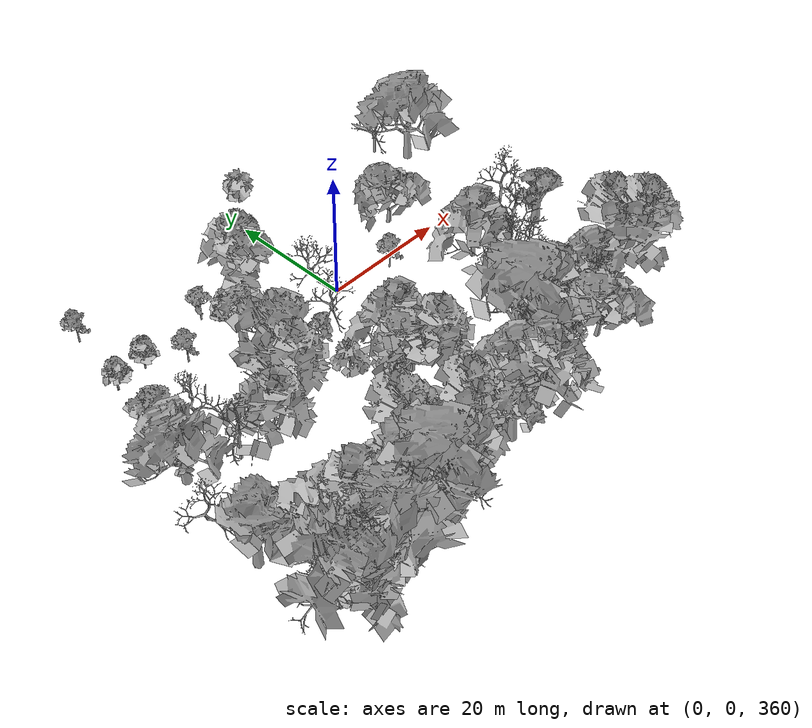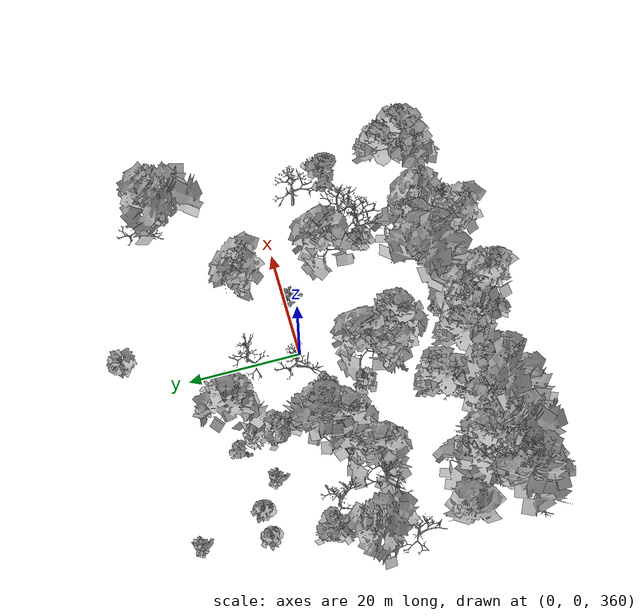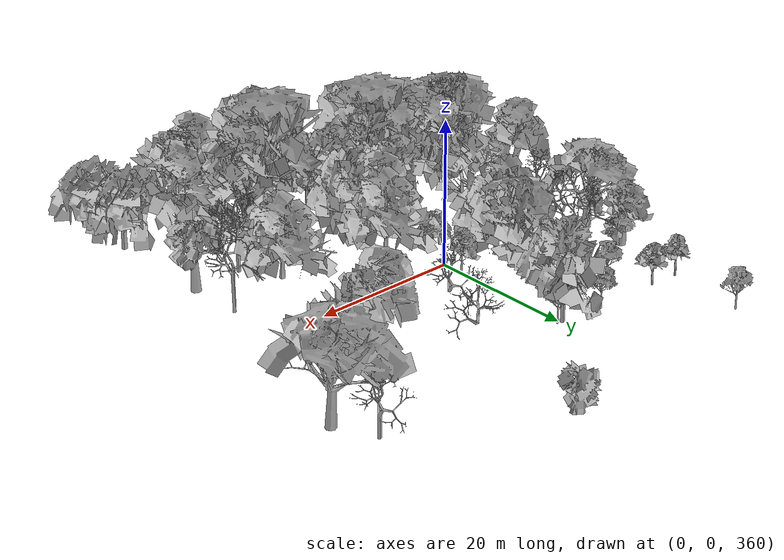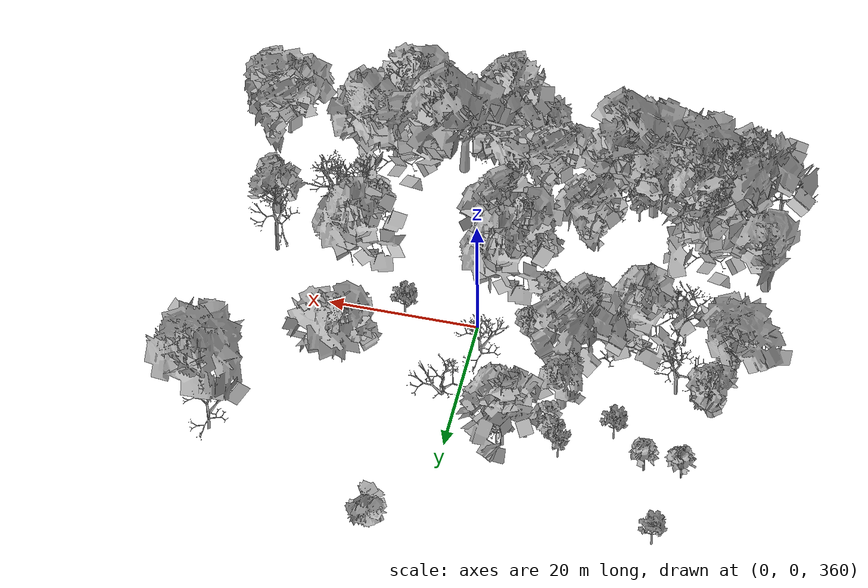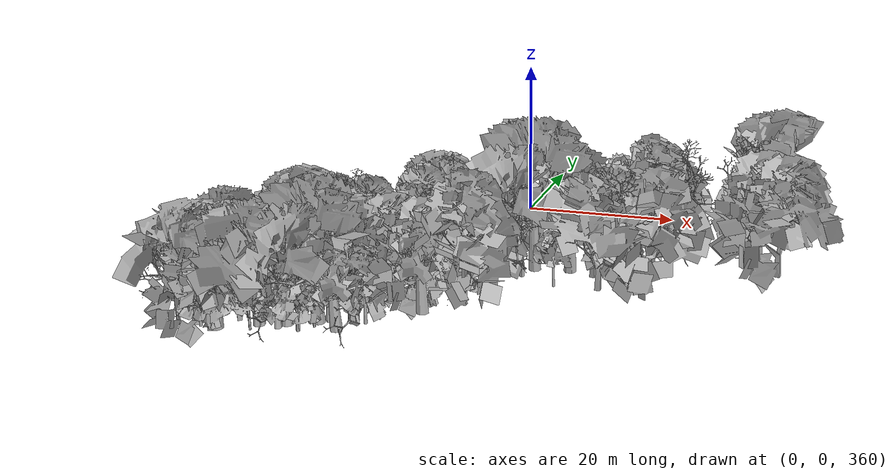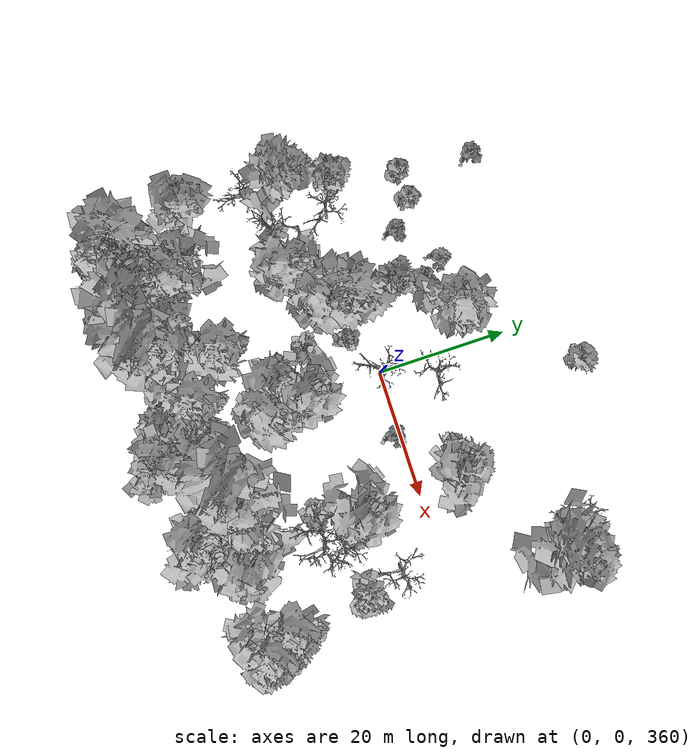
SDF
<sdf version="1.6">
 <world name="default">
  <light name="sun" type="directional">
   <pose>0 0 10 0 -0 0</pose>
   <diffuse>0.8 0.8 0.8 1</diffuse>
   <specular>0.2 0.2 0.2 1</specular>
   <attenuation>
    <range>1000</range>
    <constant>0.9</constant>
    <linear>0.01</linear>
    <quadratic>0.001</quadratic>
   </attenuation>
   <direction>-0.5 0.1 -0.9</direction>
  </light>
  <scene>
   <sky><clouds><speed>12</speed></clouds></sky>
   <ambient>0.4 0.4 0.4 1</ambient>
   <background>0.7 0.7 0.7 1</background>
   <shadows>1</shadows>
  </scene>
  <spherical_coordinates>
   <surface_model>EARTH_WGS84</surface_model>
   <latitude_deg>47.3977</latitude_deg>
   <longitude_deg>8.54559</longitude_deg>
   <elevation>0</elevation>
   <heading_deg>0</heading_deg>
  </spherical_coordinates>
  <physics name="default_physics" default="0" type="ode">
   <ode>
    <solver>
     <type>quick</type>
     <iters>100</iters>
     <sor>1.3</sor>
     <use_dynamic_moi_rescaling>0</use_dynamic_moi_rescaling>
    </solver>
    <constraints>
     <cfm>0</cfm>
     <erp>0.2</erp>
     <contact_max_correcting_vel>100</contact_max_correcting_vel>
     <contact_surface_layer>0.001</contact_surface_layer>
    </constraints>
   </ode>
   <max_step_size>0.002</max_step_size>
   <real_time_factor>1</real_time_factor>
   <real_time_update_rate>500</real_time_update_rate>
  </physics>
  <gravity>0 0 -9.8</gravity>
  <magnetic_field>6e-06 2.3e-05 -4.2e-05</magnetic_field>
  <atmosphere type="adiabatic"/>
  <model name="my_mesh0">
   <pose>-31.9616 -32.6621 352.6 0 0 -0.644638</pose>
   <static>1</static>
   <link name="body">
    <visual name="visual">
     <geometry><mesh><uri>model://trees/9.dae</uri><scale>1 1 1</scale></mesh></geometry>
    </visual>
    <collision name="collision">
     <geometry><mesh><uri>model://trees/9.dae</uri><scale>1 1 1</scale></mesh></geometry>
    </collision>
   </link>
  </model>
  <model name="my_mesh1">
   <pose>-2.45586 -34.0318 358.211 0 -0 0.863021</pose>
   <static>1</static>
   <link name="body">
    <visual name="visual">
     <geometry><mesh><uri>model://trees/7.dae</uri><scale>1 1 1</scale></mesh></geometry>
    </visual>
    <collision name="collision">
     <geometry><mesh><uri>model://trees/7.dae</uri><scale>1 1 1</scale></mesh></geometry>
    </collision>
   </link>
  </model>
  <model name="my_mesh2">
   <pose>-2.94447 -28.1812 357.92 0 0 -0.448792</pose>
   <static>1</static>
   <link name="body">
    <visual name="visual">
     <geometry><mesh><uri>model://trees/0.dae</uri><scale>1 1 1</scale></mesh></geometry>
    </visual>
    <collision name="collision">
     <geometry><mesh><uri>model://trees/0.dae</uri><scale>1 1 1</scale></mesh></geometry>
    </collision>
   </link>
  </model>
  <model name="my_mesh3">
   <pose>-23.2291 -33.0961 353.685 0 -0 0.7022</pose>
   <static>1</static>
   <link name="body">
    <visual name="visual">
     <geometry><mesh><uri>model://trees/9.dae</uri><scale>1 1 1</scale></mesh></geometry>
    </visual>
    <collision name="collision">
     <geometry><mesh><uri>model://trees/9.dae</uri><scale>1 1 1</scale></mesh></geometry>
    </collision>
   </link>
  </model>
  <model name="my_mesh4">
   <pose>-20.8347 -32.3833 354.071 0 0 -0.232654</pose>
   <static>1</static>
   <link name="body">
    <visual name="visual">
     <geometry><mesh><uri>model://trees/18.dae</uri><scale>1 1 1</scale></mesh></geometry>
    </visual>
    <collision name="collision">
     <geometry><mesh><uri>model://trees/18.dae</uri><scale>1 1 1</scale></mesh></geometry>
    </collision>
   </link>
  </model>
  <model name="my_mesh5">
   <pose>-9.28209 -33.8644 355.96 0 0 -0.491317</pose>
   <static>1</static>
   <link name="body">
    <visual name="visual">
     <geometry><mesh><uri>model://trees/5.dae</uri><scale>1 1 1</scale></mesh></geometry>
    </visual>
    <collision name="collision">
     <geometry><mesh><uri>model://trees/5.dae</uri><scale>1 1 1</scale></mesh></geometry>
    </collision>
   </link>
  </model>
  <model name="my_mesh6">
   <pose>-16.8988 -32.1122 354.467 0 -0 0.034575</pose>
   <static>1</static>
   <link name="body">
    <visual name="visual">
     <geometry><mesh><uri>model://trees/3.dae</uri><scale>1 1 1</scale></mesh></geometry>
    </visual>
    <collision name="collision">
     <geometry><mesh><uri>model://trees/3.dae</uri><scale>1 1 1</scale></mesh></geometry>
    </collision>
   </link>
  </model>
  <model name="my_mesh7">
   <pose>17.7326 -30.8489 362.365 0 0 -0.478753</pose>
   <static>1</static>
   <link name="body">
    <visual name="visual">
     <geometry><mesh><uri>model://trees/16.dae</uri><scale>1 1 1</scale></mesh></geometry>
    </visual>
    <collision name="collision">
     <geometry><mesh><uri>model://trees/16.dae</uri><scale>1 1 1</scale></mesh></geometry>
    </collision>
   </link>
  </model>
  <model name="my_mesh8">
   <pose>-28.0536 -34.3085 353.142 0 0 -0.996813</pose>
   <static>1</static>
   <link name="body">
    <visual name="visual">
     <geometry><mesh><uri>model://trees/7.dae</uri><scale>1 1 1</scale></mesh></geometry>
    </visual>
    <collision name="collision">
     <geometry><mesh><uri>model://trees/7.dae</uri><scale>1 1 1</scale></mesh></geometry>
    </collision>
   </link>
  </model>
  <model name="my_mesh9">
   <pose>-19.8212 -32.8134 354.159 0 0 -1.15603</pose>
   <static>1</static>
   <link name="body">
    <visual name="visual">
     <geometry><mesh><uri>model://trees/3.dae</uri><scale>1 1 1</scale></mesh></geometry>
    </visual>
    <collision name="collision">
     <geometry><mesh><uri>model://trees/3.dae</uri><scale>1 1 1</scale></mesh></geometry>
    </collision>
   </link>
  </model>
  <model name="my_mesh10">
   <pose>-20.2462 -33.931 354.063 0 0 -0.728865</pose>
   <static>1</static>
   <link name="body">
    <visual name="visual">
     <geometry><mesh><uri>model://trees/0.dae</uri><scale>1 1 1</scale></mesh></geometry>
    </visual>
    <collision name="collision">
     <geometry><mesh><uri>model://trees/0.dae</uri><scale>1 1 1</scale></mesh></geometry>
    </collision>
   </link>
  </model>
  <model name="my_mesh11">
   <pose>11.3092 -32.0291 361.992 0 -0 1.49483</pose>
   <static>1</static>
   <link name="body">
    <visual name="visual">
     <geometry><mesh><uri>model://trees/6.dae</uri><scale>1 1 1</scale></mesh></geometry>
    </visual>
    <collision name="collision">
     <geometry><mesh><uri>model://trees/6.dae</uri><scale>1 1 1</scale></mesh></geometry>
    </collision>
   </link>
  </model>
  <model name="my_mesh12">
   <pose>-10.739 -22.285 355.56 0 -0 0.79419</pose>
   <static>1</static>
   <link name="body">
    <visual name="visual">
     <geometry><mesh><uri>model://trees/1.dae</uri><scale>1 1 1</scale></mesh></geometry>
    </visual>
    <collision name="collision">
     <geometry><mesh><uri>model://trees/1.dae</uri><scale>1 1 1</scale></mesh></geometry>
    </collision>
   </link>
  </model>
  <model name="my_mesh13">
   <pose>-12.6667 -29.9827 355.102 0 0 -1.39934</pose>
   <static>1</static>
   <link name="body">
    <visual name="visual">
     <geometry><mesh><uri>model://trees/11.dae</uri><scale>1 1 1</scale></mesh></geometry>
    </visual>
    <collision name="collision">
     <geometry><mesh><uri>model://trees/11.dae</uri><scale>1 1 1</scale></mesh></geometry>
    </collision>
   </link>
  </model>
  <model name="my_mesh14">
   <pose>-26.1301 -31.0528 353.348 0 -0 0.973771</pose>
   <static>1</static>
   <link name="body">
    <visual name="visual">
     <geometry><mesh><uri>model://trees/6.dae</uri><scale>1 1 1</scale></mesh></geometry>
    </visual>
    <collision name="collision">
     <geometry><mesh><uri>model://trees/6.dae</uri><scale>1 1 1</scale></mesh></geometry>
    </collision>
   </link>
  </model>
  <model name="my_mesh15">
   <pose>2.02236 -30.4488 359.914 0 -0 1.04379</pose>
   <static>1</static>
   <link name="body">
    <visual name="visual">
     <geometry><mesh><uri>model://trees/12.dae</uri><scale>1 1 1</scale></mesh></geometry>
    </visual>
    <collision name="collision">
     <geometry><mesh><uri>model://trees/12.dae</uri><scale>1 1 1</scale></mesh></geometry>
    </collision>
   </link>
  </model>
  <model name="my_mesh16">
   <pose>-34.6397 -32.7271 352.13 0 0 -1.29028</pose>
   <static>1</static>
   <link name="body">
    <visual name="visual">
     <geometry><mesh><uri>model://trees/16.dae</uri><scale>1 1 1</scale></mesh></geometry>
    </visual>
    <collision name="collision">
     <geometry><mesh><uri>model://trees/16.dae</uri><scale>1 1 1</scale></mesh></geometry>
    </collision>
   </link>
  </model>
  <model name="my_mesh17">
   <pose>-4.30556 -29.3713 357.237 0 0 -0.629741</pose>
   <static>1</static>
   <link name="body">
    <visual name="visual">
     <geometry><mesh><uri>model://trees/13.dae</uri><scale>1 1 1</scale></mesh></geometry>
    </visual>
    <collision name="collision">
     <geometry><mesh><uri>model://trees/13.dae</uri><scale>1 1 1</scale></mesh></geometry>
    </collision>
   </link>
  </model>
  <model name="my_mesh18">
   <pose>1.2946 -32.9496 359.534 0 -0 0.631142</pose>
   <static>1</static>
   <link name="body">
    <visual name="visual">
     <geometry><mesh><uri>model://trees/1.dae</uri><scale>1 1 1</scale></mesh></geometry>
    </visual>
    <collision name="collision">
     <geometry><mesh><uri>model://trees/1.dae</uri><scale>1 1 1</scale></mesh></geometry>
    </collision>
   </link>
  </model>
  <model name="my_mesh19">
   <pose>-12.5524 -34.5315 355.067 0 -0 1.21509</pose>
   <static>1</static>
   <link name="body">
    <visual name="visual">
     <geometry><mesh><uri>model://trees/7.dae</uri><scale>1 1 1</scale></mesh></geometry>
    </visual>
    <collision name="collision">
     <geometry><mesh><uri>model://trees/7.dae</uri><scale>1 1 1</scale></mesh></geometry>
    </collision>
   </link>
  </model>
  <model name="my_mesh20">
   <pose>-15.7928 -32.4644 354.63 0 0 -0.480543</pose>
   <static>1</static>
   <link name="body">
    <visual name="visual">
     <geometry><mesh><uri>model://trees/10.dae</uri><scale>1 1 1</scale></mesh></geometry>
    </visual>
    <collision name="collision">
     <geometry><mesh><uri>model://trees/10.dae</uri><scale>1 1 1</scale></mesh></geometry>
    </collision>
   </link>
  </model>
  <model name="my_mesh21">
   <pose>-19.4488 -33.173 354.235 0 -0 0.231225</pose>
   <static>1</static>
   <link name="body">
    <visual name="visual">
     <geometry><mesh><uri>model://trees/7.dae</uri><scale>1 1 1</scale></mesh></geometry>
    </visual>
    <collision name="collision">
     <geometry><mesh><uri>model://trees/7.dae</uri><scale>1 1 1</scale></mesh></geometry>
    </collision>
   </link>
  </model>
  <model name="my_mesh22">
   <pose>-28.4609 -34.9176 353.165 0 0 -0.772738</pose>
   <static>1</static>
   <link name="body">
    <visual name="visual">
     <geometry><mesh><uri>model://trees/13.dae</uri><scale>1 1 1</scale></mesh></geometry>
    </visual>
    <collision name="collision">
     <geometry><mesh><uri>model://trees/13.dae</uri><scale>1 1 1</scale></mesh></geometry>
    </collision>
   </link>
  </model>
  <model name="my_mesh23">
   <pose>-15.7627 -33.6822 354.62 0 0 -1.33332</pose>
   <static>1</static>
   <link name="body">
    <visual name="visual">
     <geometry><mesh><uri>model://trees/2.dae</uri><scale>1 1 1</scale></mesh></geometry>
    </visual>
    <collision name="collision">
     <geometry><mesh><uri>model://trees/2.dae</uri><scale>1 1 1</scale></mesh></geometry>
    </collision>
   </link>
  </model>
  <model name="my_mesh24">
   <pose>-30.7 -33.7875 352.853 0 0 -0.228179</pose>
   <static>1</static>
   <link name="body">
    <visual name="visual">
     <geometry><mesh><uri>model://trees/5.dae</uri><scale>1 1 1</scale></mesh></geometry>
    </visual>
    <collision name="collision">
     <geometry><mesh><uri>model://trees/5.dae</uri><scale>1 1 1</scale></mesh></geometry>
    </collision>
   </link>
  </model>
  <model name="my_mesh25">
   <pose>-3.49565 -31.3298 357.447 0 0 -0.848578</pose>
   <static>1</static>
   <link name="body">
    <visual name="visual">
     <geometry><mesh><uri>model://trees/4.dae</uri><scale>1 1 1</scale></mesh></geometry>
    </visual>
    <collision name="collision">
     <geometry><mesh><uri>model://trees/4.dae</uri><scale>1 1 1</scale></mesh></geometry>
    </collision>
   </link>
  </model>
  <model name="my_mesh26">
   <pose>-12.4435 -24.7934 355.113 0 0 -0.609064</pose>
   <static>1</static>
   <link name="body">
    <visual name="visual">
     <geometry><mesh><uri>model://trees/17.dae</uri><scale>1 1 1</scale></mesh></geometry>
    </visual>
    <collision name="collision">
     <geometry><mesh><uri>model://trees/17.dae</uri><scale>1 1 1</scale></mesh></geometry>
    </collision>
   </link>
  </model>
  <model name="my_mesh27">
   <pose>-13.2617 -32.6478 354.922 0 -0 0.856202</pose>
   <static>1</static>
   <link name="body">
    <visual name="visual">
     <geometry><mesh><uri>model://trees/6.dae</uri><scale>1 1 1</scale></mesh></geometry>
    </visual>
    <collision name="collision">
     <geometry><mesh><uri>model://trees/6.dae</uri><scale>1 1 1</scale></mesh></geometry>
    </collision>
   </link>
  </model>
  <model name="my_mesh28">
   <pose>-26.7477 -31.7982 353.28 0 0 -0.145952</pose>
   <static>1</static>
   <link name="body">
    <visual name="visual">
     <geometry><mesh><uri>model://trees/14.dae</uri><scale>1 1 1</scale></mesh></geometry>
    </visual>
    <collision name="collision">
     <geometry><mesh><uri>model://trees/14.dae</uri><scale>1 1 1</scale></mesh></geometry>
    </collision>
   </link>
  </model>
  <model name="my_mesh29">
   <pose>-10.5729 -33.1514 355.5 0 -0 0.073133</pose>
   <static>1</static>
   <link name="body">
    <visual name="visual">
     <geometry><mesh><uri>model://trees/19.dae</uri><scale>1 1 1</scale></mesh></geometry>
    </visual>
    <collision name="collision">
     <geometry><mesh><uri>model://trees/19.dae</uri><scale>1 1 1</scale></mesh></geometry>
    </collision>
   </link>
  </model>
  <model name="my_mesh30">
   <pose>-24.3112 -26.7209 353.578 0 -0 0.035502</pose>
   <static>1</static>
   <link name="body">
    <visual name="visual">
     <geometry><mesh><uri>model://trees/15.dae</uri><scale>1 1 1</scale></mesh></geometry>
    </visual>
    <collision name="collision">
     <geometry><mesh><uri>model://trees/15.dae</uri><scale>1 1 1</scale></mesh></geometry>
    </collision>
   </link>
  </model>
  <model name="my_mesh31">
   <pose>2.48173 -34.4758 359.904 0 -0 0.750609</pose>
   <static>1</static>
   <link name="body">
    <visual name="visual">
     <geometry><mesh><uri>model://trees/15.dae</uri><scale>1 1 1</scale></mesh></geometry>
    </visual>
    <collision name="collision">
     <geometry><mesh><uri>model://trees/15.dae</uri><scale>1 1 1</scale></mesh></geometry>
    </collision>
   </link>
  </model>
  <model name="my_mesh32">
   <pose>-29.844 -32.7979 352.958 0 0 -0.435749</pose>
   <static>1</static>
   <link name="body">
    <visual name="visual">
     <geometry><mesh><uri>model://trees/14.dae</uri><scale>1 1 1</scale></mesh></geometry>
    </visual>
    <collision name="collision">
     <geometry><mesh><uri>model://trees/14.dae</uri><scale>1 1 1</scale></mesh></geometry>
    </collision>
   </link>
  </model>
  <model name="my_mesh33">
   <pose>17.0497 -25.5319 361.848 0 -0 0.904331</pose>
   <static>1</static>
   <link name="body">
    <visual name="visual">
     <geometry><mesh><uri>model://trees/0.dae</uri><scale>1 1 1</scale></mesh></geometry>
    </visual>
    <collision name="collision">
     <geometry><mesh><uri>model://trees/0.dae</uri><scale>1 1 1</scale></mesh></geometry>
    </collision>
   </link>
  </model>
  <model name="my_mesh34">
   <pose>-1.97522 -16.4482 357.273 0 -0 0.673133</pose>
   <static>1</static>
   <link name="body">
    <visual name="visual">
     <geometry><mesh><uri>model://trees/13.dae</uri><scale>1 1 1</scale></mesh></geometry>
    </visual>
    <collision name="collision">
     <geometry><mesh><uri>model://trees/13.dae</uri><scale>1 1 1</scale></mesh></geometry>
    </collision>
   </link>
  </model>
  <model name="my_mesh35">
   <pose>0.281241 -17.6546 358.396 0 0 -0.776448</pose>
   <static>1</static>
   <link name="body">
    <visual name="visual">
     <geometry><mesh><uri>model://trees/12.dae</uri><scale>1 1 1</scale></mesh></geometry>
    </visual>
    <collision name="collision">
     <geometry><mesh><uri>model://trees/12.dae</uri><scale>1 1 1</scale></mesh></geometry>
    </collision>
   </link>
  </model>
  <model name="my_mesh36">
   <pose>-12.4819 -25.6655 355.13 0 -0 1.16224</pose>
   <static>1</static>
   <link name="body">
    <visual name="visual">
     <geometry><mesh><uri>model://trees/0.dae</uri><scale>1 1 1</scale></mesh></geometry>
    </visual>
    <collision name="collision">
     <geometry><mesh><uri>model://trees/0.dae</uri><scale>1 1 1</scale></mesh></geometry>
    </collision>
   </link>
  </model>
  <model name="my_mesh37">
   <pose>-28.1585 -34.6249 353.165 0 0 -1.15739</pose>
   <static>1</static>
   <link name="body">
    <visual name="visual">
     <geometry><mesh><uri>model://trees/4.dae</uri><scale>1 1 1</scale></mesh></geometry>
    </visual>
    <collision name="collision">
     <geometry><mesh><uri>model://trees/4.dae</uri><scale>1 1 1</scale></mesh></geometry>
    </collision>
   </link>
  </model>
  <model name="my_mesh38">
   <pose>-4.35798 -16.1596 356.883 0 0 -1.54518</pose>
   <static>1</static>
   <link name="body">
    <visual name="visual">
     <geometry><mesh><uri>model://trees/3.dae</uri><scale>1 1 1</scale></mesh></geometry>
    </visual>
    <collision name="collision">
     <geometry><mesh><uri>model://trees/3.dae</uri><scale>1 1 1</scale></mesh></geometry>
    </collision>
   </link>
  </model>
  <model name="my_mesh39">
   <pose>-17.1913 -34.7609 354.45 0 -0 0.403878</pose>
   <static>1</static>
   <link name="body">
    <visual name="visual">
     <geometry><mesh><uri>model://trees/4.dae</uri><scale>1 1 1</scale></mesh></geometry>
    </visual>
    <collision name="collision">
     <geometry><mesh><uri>model://trees/4.dae</uri><scale>1 1 1</scale></mesh></geometry>
    </collision>
   </link>
  </model>
  <model name="my_mesh40">
   <pose>-14.6327 -31.7112 354.731 0 -0 1.29107</pose>
   <static>1</static>
   <link name="body">
    <visual name="visual">
     <geometry><mesh><uri>model://trees/11.dae</uri><scale>1 1 1</scale></mesh></geometry>
    </visual>
    <collision name="collision">
     <geometry><mesh><uri>model://trees/11.dae</uri><scale>1 1 1</scale></mesh></geometry>
    </collision>
   </link>
  </model>
  <model name="my_mesh41">
   <pose>-31.4467 1.81499 353.018 0 -0 1.08474</pose>
   <static>1</static>
   <link name="body">
    <visual name="visual">
     <geometry><mesh><uri>model://trees/1.dae</uri><scale>1 1 1</scale></mesh></geometry>
    </visual>
    <collision name="collision">
     <geometry><mesh><uri>model://trees/1.dae</uri><scale>1 1 1</scale></mesh></geometry>
    </collision>
   </link>
  </model>
  <model name="my_mesh42">
   <pose>4.61831 -33.1516 360.689 0 0 -1.51587</pose>
   <static>1</static>
   <link name="body">
    <visual name="visual">
     <geometry><mesh><uri>model://trees/17.dae</uri><scale>1 1 1</scale></mesh></geometry>
    </visual>
    <collision name="collision">
     <geometry><mesh><uri>model://trees/17.dae</uri><scale>1 1 1</scale></mesh></geometry>
    </collision>
   </link>
  </model>
  <model name="my_mesh43">
   <pose>-17.861 -29.0107 354.4 0 -0 0.640372</pose>
   <static>1</static>
   <link name="body">
    <visual name="visual">
     <geometry><mesh><uri>model://trees/11.dae</uri><scale>1 1 1</scale></mesh></geometry>
    </visual>
    <collision name="collision">
     <geometry><mesh><uri>model://trees/11.dae</uri><scale>1 1 1</scale></mesh></geometry>
    </collision>
   </link>
  </model>
  <model name="my_mesh44">
   <pose>14.5737 -27.7234 361.779 0 -0 0.42966</pose>
   <static>1</static>
   <link name="body">
    <visual name="visual">
     <geometry><mesh><uri>model://trees/13.dae</uri><scale>1 1 1</scale></mesh></geometry>
    </visual>
    <collision name="collision">
     <geometry><mesh><uri>model://trees/13.dae</uri><scale>1 1 1</scale></mesh></geometry>
    </collision>
   </link>
  </model>
  <model name="my_mesh45">
   <pose>-34.8113 -11.8018 352.015 0 -0 0.301943</pose>
   <static>1</static>
   <link name="body">
    <visual name="visual">
     <geometry><mesh><uri>model://trees/19.dae</uri><scale>1 1 1</scale></mesh></geometry>
    </visual>
    <collision name="collision">
     <geometry><mesh><uri>model://trees/19.dae</uri><scale>1 1 1</scale></mesh></geometry>
    </collision>
   </link>
  </model>
  <model name="my_mesh46">
   <pose>29.919 -12.2315 362.281 0 0 -0.943235</pose>
   <static>1</static>
   <link name="body">
    <visual name="visual">
     <geometry><mesh><uri>model://trees/7.dae</uri><scale>1 1 1</scale></mesh></geometry>
    </visual>
    <collision name="collision">
     <geometry><mesh><uri>model://trees/7.dae</uri><scale>1 1 1</scale></mesh></geometry>
    </collision>
   </link>
  </model>
  <model name="my_mesh47">
   <pose>-10.5809 -20.4059 355.478 0 -0 0.985222</pose>
   <static>1</static>
   <link name="body">
    <visual name="visual">
     <geometry><mesh><uri>model://trees/6.dae</uri><scale>1 1 1</scale></mesh></geometry>
    </visual>
    <collision name="collision">
     <geometry><mesh><uri>model://trees/6.dae</uri><scale>1 1 1</scale></mesh></geometry>
    </collision>
   </link>
  </model>
  <model name="my_mesh48">
   <pose>-7.40368 -9.88136 355.798 0 0 -1.01803</pose>
   <static>1</static>
   <link name="body">
    <visual name="visual">
     <geometry><mesh><uri>model://trees/4.dae</uri><scale>1 1 1</scale></mesh></geometry>
    </visual>
    <collision name="collision">
     <geometry><mesh><uri>model://trees/4.dae</uri><scale>1 1 1</scale></mesh></geometry>
    </collision>
   </link>
  </model>
  <model name="my_mesh49">
   <pose>-20.8967 -9.0906 353.903 0 0 -0.078331</pose>
   <static>1</static>
   <link name="body">
    <visual name="visual">
     <geometry><mesh><uri>model://trees/12.dae</uri><scale>1 1 1</scale></mesh></geometry>
    </visual>
    <collision name="collision">
     <geometry><mesh><uri>model://trees/12.dae</uri><scale>1 1 1</scale></mesh></geometry>
    </collision>
   </link>
  </model>
  <model name="my_mesh50">
   <pose>-0.448895 0.61083 356.299 0 0 -0.456129</pose>
   <static>1</static>
   <link name="body">
    <visual name="visual">
     <geometry><mesh><uri>model://trees/18.dae</uri><scale>1 1 1</scale></mesh></geometry>
    </visual>
    <collision name="collision">
     <geometry><mesh><uri>model://trees/18.dae</uri><scale>1 1 1</scale></mesh></geometry>
    </collision>
   </link>
  </model>
  <model name="my_mesh51">
   <pose>-26.592 -24.1985 353.169 0 0 -1.28396</pose>
   <static>1</static>
   <link name="body">
    <visual name="visual">
     <geometry><mesh><uri>model://trees/12.dae</uri><scale>1 1 1</scale></mesh></geometry>
    </visual>
    <collision name="collision">
     <geometry><mesh><uri>model://trees/12.dae</uri><scale>1 1 1</scale></mesh></geometry>
    </collision>
   </link>
  </model>
  <model name="my_mesh52">
   <pose>28.683 -6.32412 361.225 0 -0 0.057222</pose>
   <static>1</static>
   <link name="body">
    <visual name="visual">
     <geometry><mesh><uri>model://trees/16.dae</uri><scale>1 1 1</scale></mesh></geometry>
    </visual>
    <collision name="collision">
     <geometry><mesh><uri>model://trees/16.dae</uri><scale>1 1 1</scale></mesh></geometry>
    </collision>
   </link>
  </model>
  <model name="my_mesh53">
   <pose>-23.371 -34.7603 353.765 0 -0 0.286731</pose>
   <static>1</static>
   <link name="body">
    <visual name="visual">
     <geometry><mesh><uri>model://trees/2.dae</uri><scale>1 1 1</scale></mesh></geometry>
    </visual>
    <collision name="collision">
     <geometry><mesh><uri>model://trees/2.dae</uri><scale>1 1 1</scale></mesh></geometry>
    </collision>
   </link>
  </model>
  <model name="my_mesh54">
   <pose>-34.8149 -21.3807 352.062 0 -0 0.214371</pose>
   <static>1</static>
   <link name="body">
    <visual name="visual">
     <geometry><mesh><uri>model://trees/11.dae</uri><scale>1 1 1</scale></mesh></geometry>
    </visual>
    <collision name="collision">
     <geometry><mesh><uri>model://trees/11.dae</uri><scale>1 1 1</scale></mesh></geometry>
    </collision>
   </link>
  </model>
  <model name="my_mesh55">
   <pose>-10.5935 -23.6797 355.581 0 0 -0.356027</pose>
   <static>1</static>
   <link name="body">
    <visual name="visual">
     <geometry><mesh><uri>model://trees/13.dae</uri><scale>1 1 1</scale></mesh></geometry>
    </visual>
    <collision name="collision">
     <geometry><mesh><uri>model://trees/13.dae</uri><scale>1 1 1</scale></mesh></geometry>
    </collision>
   </link>
  </model>
  <model name="my_mesh56">
   <pose>-11.4281 -32.5724 355.363 0 0 -0.777083</pose>
   <static>1</static>
   <link name="body">
    <visual name="visual">
     <geometry><mesh><uri>model://trees/7.dae</uri><scale>1 1 1</scale></mesh></geometry>
    </visual>
    <collision name="collision">
     <geometry><mesh><uri>model://trees/7.dae</uri><scale>1 1 1</scale></mesh></geometry>
    </collision>
   </link>
  </model>
  <model name="my_mesh57">
   <pose>22.5978 -13.18 361.921 0 -0 0.864912</pose>
   <static>1</static>
   <link name="body">
    <visual name="visual">
     <geometry><mesh><uri>model://trees/16.dae</uri><scale>1 1 1</scale></mesh></geometry>
    </visual>
    <collision name="collision">
     <geometry><mesh><uri>model://trees/16.dae</uri><scale>1 1 1</scale></mesh></geometry>
    </collision>
   </link>
  </model>
  <model name="my_mesh58">
   <pose>-16.265 -27.3063 354.579 0 0 -0.888265</pose>
   <static>1</static>
   <link name="body">
    <visual name="visual">
     <geometry><mesh><uri>model://trees/3.dae</uri><scale>1 1 1</scale></mesh></geometry>
    </visual>
    <collision name="collision">
     <geometry><mesh><uri>model://trees/3.dae</uri><scale>1 1 1</scale></mesh></geometry>
    </collision>
   </link>
  </model>
  <model name="my_mesh59">
   <pose>31.4399 -24.8828 363.771 0 0 -0.671557</pose>
   <static>1</static>
   <link name="body">
    <visual name="visual">
     <geometry><mesh><uri>model://trees/13.dae</uri><scale>1 1 1</scale></mesh></geometry>
    </visual>
    <collision name="collision">
     <geometry><mesh><uri>model://trees/13.dae</uri><scale>1 1 1</scale></mesh></geometry>
    </collision>
   </link>
  </model>
  <model name="my_mesh60">
   <pose>-33.0659 -5.45752 352.652 0 -0 0.25966</pose>
   <static>1</static>
   <link name="body">
    <visual name="visual">
     <geometry><mesh><uri>model://trees/6.dae</uri><scale>1 1 1</scale></mesh></geometry>
    </visual>
    <collision name="collision">
     <geometry><mesh><uri>model://trees/6.dae</uri><scale>1 1 1</scale></mesh></geometry>
    </collision>
   </link>
  </model>
  <model name="my_mesh61">
   <pose>16.1092 -24.6704 361.697 0 0 -1.22324</pose>
   <static>1</static>
   <link name="body">
    <visual name="visual">
     <geometry><mesh><uri>model://trees/12.dae</uri><scale>1 1 1</scale></mesh></geometry>
    </visual>
    <collision name="collision">
     <geometry><mesh><uri>model://trees/12.dae</uri><scale>1 1 1</scale></mesh></geometry>
    </collision>
   </link>
  </model>
  <model name="my_mesh62">
   <pose>-30.0488 13.1913 352.984 0 -0 0.419285</pose>
   <static>1</static>
   <link name="body">
    <visual name="visual">
     <geometry><mesh><uri>model://trees/2.dae</uri><scale>1 1 1</scale></mesh></geometry>
    </visual>
    <collision name="collision">
     <geometry><mesh><uri>model://trees/2.dae</uri><scale>1 1 1</scale></mesh></geometry>
    </collision>
   </link>
  </model>
  <model name="my_mesh63">
   <pose>19.405 -15.9965 361.694 0 -0 0.009861</pose>
   <static>1</static>
   <link name="body">
    <visual name="visual">
     <geometry><mesh><uri>model://trees/17.dae</uri><scale>1 1 1</scale></mesh></geometry>
    </visual>
    <collision name="collision">
     <geometry><mesh><uri>model://trees/17.dae</uri><scale>1 1 1</scale></mesh></geometry>
    </collision>
   </link>
  </model>
  <model name="my_mesh64">
   <pose>11.5804 -25.6075 361.277 0 0 -0.008856</pose>
   <static>1</static>
   <link name="body">
    <visual name="visual">
     <geometry><mesh><uri>model://trees/11.dae</uri><scale>1 1 1</scale></mesh></geometry>
    </visual>
    <collision name="collision">
     <geometry><mesh><uri>model://trees/11.dae</uri><scale>1 1 1</scale></mesh></geometry>
    </collision>
   </link>
  </model>
  <model name="my_mesh65">
   <pose>18.0002 6.8199 358.521 0 -0 1.1015</pose>
   <static>1</static>
   <link name="body">
    <visual name="visual">
     <geometry><mesh><uri>model://trees/13.dae</uri><scale>1 1 1</scale></mesh></geometry>
    </visual>
    <collision name="collision">
     <geometry><mesh><uri>model://trees/13.dae</uri><scale>1 1 1</scale></mesh></geometry>
    </collision>
   </link>
  </model>
  <model name="my_mesh66">
   <pose>-6.36043 -3.32339 355.672 0 -0 0.320644</pose>
   <static>1</static>
   <link name="body">
    <visual name="visual">
     <geometry><mesh><uri>model://trees/6.dae</uri><scale>1 1 1</scale></mesh></geometry>
    </visual>
    <collision name="collision">
     <geometry><mesh><uri>model://trees/6.dae</uri><scale>1 1 1</scale></mesh></geometry>
    </collision>
   </link>
  </model>
  <model name="my_mesh67">
   <pose>-20.3472 9.55261 354.015 0 -0 0.248907</pose>
   <static>1</static>
   <link name="body">
    <visual name="visual">
     <geometry><mesh><uri>model://trees/3.dae</uri><scale>1 1 1</scale></mesh></geometry>
    </visual>
    <collision name="collision">
     <geometry><mesh><uri>model://trees/3.dae</uri><scale>1 1 1</scale></mesh></geometry>
    </collision>
   </link>
  </model>
  <model name="my_mesh68">
   <pose>6.84012 -28.232 361.161 0 -0 0.205987</pose>
   <static>1</static>
   <link name="body">
    <visual name="visual">
     <geometry><mesh><uri>model://trees/17.dae</uri><scale>1 1 1</scale></mesh></geometry>
    </visual>
    <collision name="collision">
     <geometry><mesh><uri>model://trees/17.dae</uri><scale>1 1 1</scale></mesh></geometry>
    </collision>
   </link>
  </model>
  <model name="my_mesh69">
   <pose>-6.55673 14.6954 355.355 0 0 -0.490438</pose>
   <static>1</static>
   <link name="body">
    <visual name="visual">
     <geometry><mesh><uri>model://trees/15.dae</uri><scale>1 1 1</scale></mesh></geometry>
    </visual>
    <collision name="collision">
     <geometry><mesh><uri>model://trees/15.dae</uri><scale>1 1 1</scale></mesh></geometry>
    </collision>
   </link>
  </model>
  <model name="my_mesh70">
   <pose>-12.6473 6.39008 354.897 0 -0 0.749462</pose>
   <static>1</static>
   <link name="body">
    <visual name="visual">
     <geometry><mesh><uri>model://trees/7.dae</uri><scale>1 1 1</scale></mesh></geometry>
    </visual>
    <collision name="collision">
     <geometry><mesh><uri>model://trees/7.dae</uri><scale>1 1 1</scale></mesh></geometry>
    </collision>
   </link>
  </model>
  <model name="my_mesh71">
   <pose>18.6224 -9.59104 361.04 0 -0 0.539961</pose>
   <static>1</static>
   <link name="body">
    <visual name="visual">
     <geometry><mesh><uri>model://trees/12.dae</uri><scale>1 1 1</scale></mesh></geometry>
    </visual>
    <collision name="collision">
     <geometry><mesh><uri>model://trees/12.dae</uri><scale>1 1 1</scale></mesh></geometry>
    </collision>
   </link>
  </model>
  <model name="my_mesh72">
   <pose>33.1708 -28.6595 364.253 0 0 -1.02996</pose>
   <static>1</static>
   <link name="body">
    <visual name="visual">
     <geometry><mesh><uri>model://trees/13.dae</uri><scale>1 1 1</scale></mesh></geometry>
    </visual>
    <collision name="collision">
     <geometry><mesh><uri>model://trees/13.dae</uri><scale>1 1 1</scale></mesh></geometry>
    </collision>
   </link>
  </model>
  <model name="my_mesh73">
   <pose>10.0457 -0.915119 358.93 0 -0 0.217388</pose>
   <static>1</static>
   <link name="body">
    <visual name="visual">
     <geometry><mesh><uri>model://trees/3.dae</uri><scale>1 1 1</scale></mesh></geometry>
    </visual>
    <collision name="collision">
     <geometry><mesh><uri>model://trees/3.dae</uri><scale>1 1 1</scale></mesh></geometry>
    </collision>
   </link>
  </model>
  <model name="my_mesh74">
   <pose>1.21444 -25.7778 359.455 0 0 -1.2901</pose>
   <static>1</static>
   <link name="body">
    <visual name="visual">
     <geometry><mesh><uri>model://trees/2.dae</uri><scale>1 1 1</scale></mesh></geometry>
    </visual>
    <collision name="collision">
     <geometry><mesh><uri>model://trees/2.dae</uri><scale>1 1 1</scale></mesh></geometry>
    </collision>
   </link>
  </model>
  <model name="my_mesh75">
   <pose>-5.72763 -16.5702 356.488 0 0 -1.07483</pose>
   <static>1</static>
   <link name="body">
    <visual name="visual">
     <geometry><mesh><uri>model://trees/3.dae</uri><scale>1 1 1</scale></mesh></geometry>
    </visual>
    <collision name="collision">
     <geometry><mesh><uri>model://trees/3.dae</uri><scale>1 1 1</scale></mesh></geometry>
    </collision>
   </link>
  </model>
  <model name="my_mesh76">
   <pose>22.6173 -16.3522 362.206 0 -0 0.323474</pose>
   <static>1</static>
   <link name="body">
    <visual name="visual">
     <geometry><mesh><uri>model://trees/19.dae</uri><scale>1 1 1</scale></mesh></geometry>
    </visual>
    <collision name="collision">
     <geometry><mesh><uri>model://trees/19.dae</uri><scale>1 1 1</scale></mesh></geometry>
    </collision>
   </link>
  </model>
  <model name="my_mesh77">
   <pose>-31.8775 1.91317 352.892 0 -0 0.209502</pose>
   <static>1</static>
   <link name="body">
    <visual name="visual">
     <geometry><mesh><uri>model://trees/7.dae</uri><scale>1 1 1</scale></mesh></geometry>
    </visual>
    <collision name="collision">
     <geometry><mesh><uri>model://trees/7.dae</uri><scale>1 1 1</scale></mesh></geometry>
    </collision>
   </link>
  </model>
  <model name="my_mesh78">
   <pose>-33.1679 -5.78385 352.652 0 -0 1.32241</pose>
   <static>1</static>
   <link name="body">
    <visual name="visual">
     <geometry><mesh><uri>model://trees/8.dae</uri><scale>1 1 1</scale></mesh></geometry>
    </visual>
    <collision name="collision">
     <geometry><mesh><uri>model://trees/8.dae</uri><scale>1 1 1</scale></mesh></geometry>
    </collision>
   </link>
  </model>
  <model name="my_mesh79">
   <pose>-26.7294 0.121495 353.621 0 -0 0.69754</pose>
   <static>1</static>
   <link name="body">
    <visual name="visual">
     <geometry><mesh><uri>model://trees/17.dae</uri><scale>1 1 1</scale></mesh></geometry>
    </visual>
    <collision name="collision">
     <geometry><mesh><uri>model://trees/17.dae</uri><scale>1 1 1</scale></mesh></geometry>
    </collision>
   </link>
  </model>
  <model name="my_mesh80">
   <pose>-26.1784 -8.41395 353.325 0 0 -0.689726</pose>
   <static>1</static>
   <link name="body">
    <visual name="visual">
     <geometry><mesh><uri>model://trees/16.dae</uri><scale>1 1 1</scale></mesh></geometry>
    </visual>
    <collision name="collision">
     <geometry><mesh><uri>model://trees/16.dae</uri><scale>1 1 1</scale></mesh></geometry>
    </collision>
   </link>
  </model>
  <model name="my_mesh81">
   <pose>-0.7599 -11.9413 357.479 0 -0 0.294997</pose>
   <static>1</static>
   <link name="body">
    <visual name="visual">
     <geometry><mesh><uri>model://trees/12.dae</uri><scale>1 1 1</scale></mesh></geometry>
    </visual>
    <collision name="collision">
     <geometry><mesh><uri>model://trees/12.dae</uri><scale>1 1 1</scale></mesh></geometry>
    </collision>
   </link>
  </model>
  <model name="my_mesh82">
   <pose>17.3712 -16.0951 361.425 0 0 -0.519718</pose>
   <static>1</static>
   <link name="body">
    <visual name="visual">
     <geometry><mesh><uri>model://trees/4.dae</uri><scale>1 1 1</scale></mesh></geometry>
    </visual>
    <collision name="collision">
     <geometry><mesh><uri>model://trees/4.dae</uri><scale>1 1 1</scale></mesh></geometry>
    </collision>
   </link>
  </model>
  <model name="my_mesh83">
   <pose>-13.2764 -0.730674 355.058 0 0 -0.415642</pose>
   <static>1</static>
   <link name="body">
    <visual name="visual">
     <geometry><mesh><uri>model://trees/8.dae</uri><scale>1 1 1</scale></mesh></geometry>
    </visual>
    <collision name="collision">
     <geometry><mesh><uri>model://trees/8.dae</uri><scale>1 1 1</scale></mesh></geometry>
    </collision>
   </link>
  </model>
  <model name="my_mesh84">
   <pose>7.59308 -25.6616 361.08 0 0 -0.580477</pose>
   <static>1</static>
   <link name="body">
    <visual name="visual">
     <geometry><mesh><uri>model://trees/10.dae</uri><scale>1 1 1</scale></mesh></geometry>
    </visual>
    <collision name="collision">
     <geometry><mesh><uri>model://trees/10.dae</uri><scale>1 1 1</scale></mesh></geometry>
    </collision>
   </link>
  </model>
  <model name="my_mesh85">
   <pose>30.7751 22.1302 357.655 0 0 -0.433214</pose>
   <static>1</static>
   <link name="body">
    <visual name="visual">
     <geometry><mesh><uri>model://trees/17.dae</uri><scale>1 1 1</scale></mesh></geometry>
    </visual>
    <collision name="collision">
     <geometry><mesh><uri>model://trees/17.dae</uri><scale>1 1 1</scale></mesh></geometry>
    </collision>
   </link>
  </model>
  <model name="my_mesh86">
   <pose>-14.0696 -4.71504 354.983 0 0 -0.543088</pose>
   <static>1</static>
   <link name="body">
    <visual name="visual">
     <geometry><mesh><uri>model://trees/12.dae</uri><scale>1 1 1</scale></mesh></geometry>
    </visual>
    <collision name="collision">
     <geometry><mesh><uri>model://trees/12.dae</uri><scale>1 1 1</scale></mesh></geometry>
    </collision>
   </link>
  </model>
  <model name="my_mesh87">
   <pose>20.957 -28.0796 362.558 0 -0 1.18671</pose>
   <static>1</static>
   <link name="body">
    <visual name="visual">
     <geometry><mesh><uri>model://trees/12.dae</uri><scale>1 1 1</scale></mesh></geometry>
    </visual>
    <collision name="collision">
     <geometry><mesh><uri>model://trees/12.dae</uri><scale>1 1 1</scale></mesh></geometry>
    </collision>
   </link>
  </model>
  <model name="my_mesh88">
   <pose>-13.924 14.4903 354.478 0 0 -0.417857</pose>
   <static>1</static>
   <link name="body">
    <visual name="visual">
     <geometry><mesh><uri>model://trees/3.dae</uri><scale>1 1 1</scale></mesh></geometry>
    </visual>
    <collision name="collision">
     <geometry><mesh><uri>model://trees/3.dae</uri><scale>1 1 1</scale></mesh></geometry>
    </collision>
   </link>
  </model>
  <model name="my_mesh89">
   <pose>7.65081 30.7716 355.23 0 -0 0.105511</pose>
   <static>1</static>
   <link name="body">
    <visual name="visual">
     <geometry><mesh><uri>model://trees/5.dae</uri><scale>1 1 1</scale></mesh></geometry>
    </visual>
    <collision name="collision">
     <geometry><mesh><uri>model://trees/5.dae</uri><scale>1 1 1</scale></mesh></geometry>
    </collision>
   </link>
  </model>
  <model name="my_mesh90">
   <pose>-11.6419 11.2225 354.863 0 -0 0.131012</pose>
   <static>1</static>
   <link name="body">
    <visual name="visual">
     <geometry><mesh><uri>model://trees/0.dae</uri><scale>1 1 1</scale></mesh></geometry>
    </visual>
    <collision name="collision">
     <geometry><mesh><uri>model://trees/0.dae</uri><scale>1 1 1</scale></mesh></geometry>
    </collision>
   </link>
  </model>
  <model name="my_mesh91">
   <pose>33.5138 17.0092 357.799 0 -0 0.839908</pose>
   <static>1</static>
   <link name="body">
    <visual name="visual">
     <geometry><mesh><uri>model://trees/9.dae</uri><scale>1 1 1</scale></mesh></geometry>
    </visual>
    <collision name="collision">
     <geometry><mesh><uri>model://trees/9.dae</uri><scale>1 1 1</scale></mesh></geometry>
    </collision>
   </link>
  </model>
  <model name="my_mesh92">
   <pose>2.73643 9.03208 356.383 0 -0 1.51775</pose>
   <static>1</static>
   <link name="body">
    <visual name="visual">
     <geometry><mesh><uri>model://trees/18.dae</uri><scale>1 1 1</scale></mesh></geometry>
    </visual>
    <collision name="collision">
     <geometry><mesh><uri>model://trees/18.dae</uri><scale>1 1 1</scale></mesh></geometry>
    </collision>
   </link>
  </model>
  <model name="my_mesh93">
   <pose>-28.4582 24.7509 353.208 0 -0 0.537746</pose>
   <static>1</static>
   <link name="body">
    <visual name="visual">
     <geometry><mesh><uri>model://trees/3.dae</uri><scale>1 1 1</scale></mesh></geometry>
    </visual>
    <collision name="collision">
     <geometry><mesh><uri>model://trees/3.dae</uri><scale>1 1 1</scale></mesh></geometry>
    </collision>
   </link>
  </model>
  <model name="my_mesh94">
   <pose>16.1418 -33.2449 362.674 0 -0 0.751005</pose>
   <static>1</static>
   <link name="body">
    <visual name="visual">
     <geometry><mesh><uri>model://trees/13.dae</uri><scale>1 1 1</scale></mesh></geometry>
    </visual>
    <collision name="collision">
     <geometry><mesh><uri>model://trees/13.dae</uri><scale>1 1 1</scale></mesh></geometry>
    </collision>
   </link>
  </model>
  <model name="my_mesh95">
   <pose>-17.3355 -3.46442 354.709 0 0 -1.2224</pose>
   <static>1</static>
   <link name="body">
    <visual name="visual">
     <geometry><mesh><uri>model://trees/18.dae</uri><scale>1 1 1</scale></mesh></geometry>
    </visual>
    <collision name="collision">
     <geometry><mesh><uri>model://trees/18.dae</uri><scale>1 1 1</scale></mesh></geometry>
    </collision>
   </link>
  </model>
  <model name="my_mesh96">
   <pose>-25.1143 13.421 353.49 0 0 -0.164183</pose>
   <static>1</static>
   <link name="body">
    <visual name="visual">
     <geometry><mesh><uri>model://trees/2.dae</uri><scale>1 1 1</scale></mesh></geometry>
    </visual>
    <collision name="collision">
     <geometry><mesh><uri>model://trees/2.dae</uri><scale>1 1 1</scale></mesh></geometry>
    </collision>
   </link>
  </model>
  <model name="my_mesh97">
   <pose>-5.75978 14.6076 355.396 0 0 -1.32856</pose>
   <static>1</static>
   <link name="body">
    <visual name="visual">
     <geometry><mesh><uri>model://trees/3.dae</uri><scale>1 1 1</scale></mesh></geometry>
    </visual>
    <collision name="collision">
     <geometry><mesh><uri>model://trees/3.dae</uri><scale>1 1 1</scale></mesh></geometry>
    </collision>
   </link>
  </model>
  <model name="my_mesh98">
   <pose>1.93859 -15.9709 358.622 0 -0 1.15965</pose>
   <static>1</static>
   <link name="body">
    <visual name="visual">
     <geometry><mesh><uri>model://trees/3.dae</uri><scale>1 1 1</scale></mesh></geometry>
    </visual>
    <collision name="collision">
     <geometry><mesh><uri>model://trees/3.dae</uri><scale>1 1 1</scale></mesh></geometry>
    </collision>
   </link>
  </model>
 </world>
</sdf>
